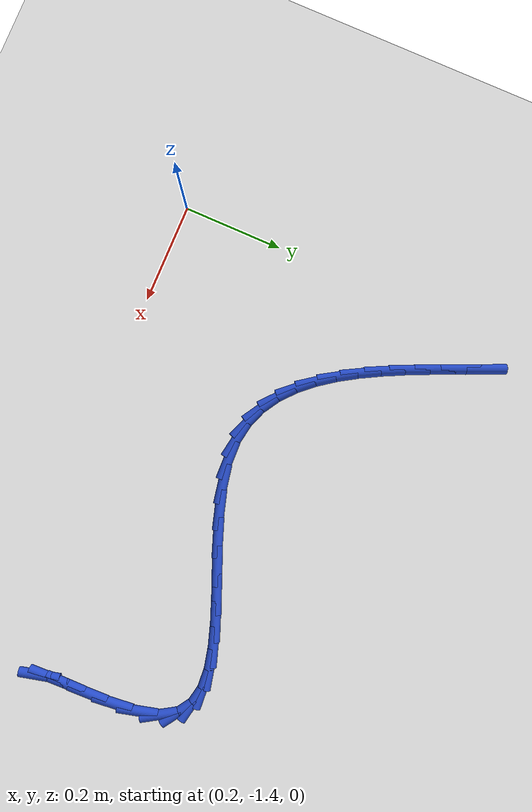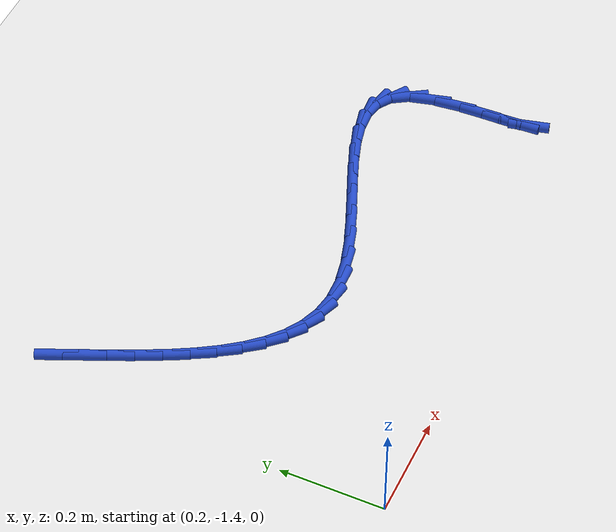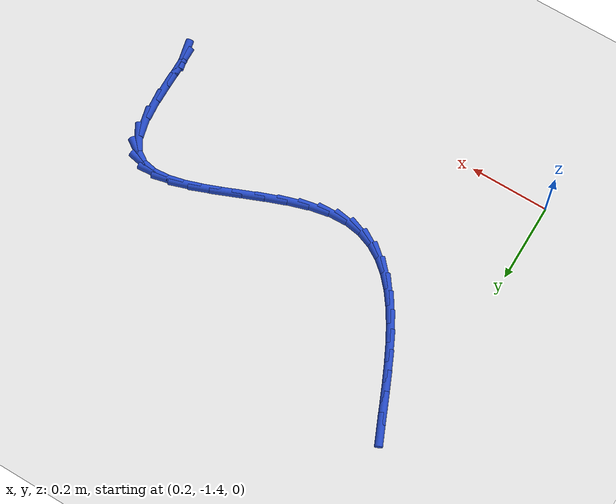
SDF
<sdf version="1.6">
 <world name="default">
  <model name="ground_plane">
   <static>1</static>
   <link name="link">
    <collision name="collision">
     <geometry><plane><normal>0 0 1</normal><size>100 100</size></plane></geometry>
     <surface><friction><ode><mu>100</mu><mu2>50</mu2></ode></friction></surface>
    </collision>
    <visual name="visual">
     <cast_shadows>0</cast_shadows>
     <geometry><plane><normal>0 0 1</normal><size>100 100</size></plane></geometry>
     <material>
      <script><uri>file://media/materials/scripts/gazebo.material</uri><name>Gazebo/WhiteGlow</name></script>
     </material>
    </visual>
   </link>
  </model>
  <model name="line">
   <link name="link_141">
    <pose>1.155107955682693 -1.2926179977778152 0.01 0 1.57 -1.333927067120925</pose>
    <collision name="collision">
     <geometry><cylinder><radius>0.01</radius><length>0.08</length></cylinder></geometry>
    </collision>
    <visual name="visual">
     <material>
      <script><name>Gazebo/Blue</name><uri>file://media/materials/scripts/gazebo.material</uri></script>
     </material>
     <geometry><cylinder><radius>0.01</radius><length>0.08</length></cylinder></geometry>
    </visual>
   </link>
   <link name="link_142">
    <pose>1.150806997937086 -1.2748013454733287 0.01 0 1.57 -1.5365008615518945</pose>
    <collision name="collision">
     <geometry><cylinder><radius>0.01</radius><length>0.08</length></cylinder></geometry>
    </collision>
    <visual name="visual">
     <material>
      <script><name>Gazebo/Blue</name><uri>file://media/materials/scripts/gazebo.material</uri></script>
     </material>
     <geometry><cylinder><radius>0.01</radius><length>0.08</length></cylinder></geometry>
    </visual>
   </link>
   <link name="link_143">
    <pose>1.149600558940589 -1.2396373389548523 0.01 0 1.57 -1.5639382713969874</pose>
    <collision name="collision">
     <geometry><cylinder><radius>0.01</radius><length>0.08</length></cylinder></geometry>
    </collision>
    <visual name="visual">
     <material>
      <script><name>Gazebo/Blue</name><uri>file://media/materials/scripts/gazebo.material</uri></script>
     </material>
     <geometry><cylinder><radius>0.01</radius><length>0.08</length></cylinder></geometry>
    </visual>
   </link>
   <link name="link_144">
    <pose>1.14928223666944 -1.1932222457364223 0.01 0 1.57 -1.538558429131092</pose>
    <collision name="collision">
     <geometry><cylinder><radius>0.01</radius><length>0.08</length></cylinder></geometry>
    </collision>
    <visual name="visual">
     <material>
      <script><name>Gazebo/Blue</name><uri>file://media/materials/scripts/gazebo.material</uri></script>
     </material>
     <geometry><cylinder><radius>0.01</radius><length>0.08</length></cylinder></geometry>
    </visual>
   </link>
   <link name="link_145">
    <pose>1.147622084886745 -1.141743187201961 0.01 0 1.57 -1.4672687945599394</pose>
    <collision name="collision">
     <geometry><cylinder><radius>0.01</radius><length>0.08</length></cylinder></geometry>
    </collision>
    <visual name="visual">
     <material>
      <script><name>Gazebo/Blue</name><uri>file://media/materials/scripts/gazebo.material</uri></script>
     </material>
     <geometry><cylinder><radius>0.01</radius><length>0.08</length></cylinder></geometry>
    </visual>
   </link>
   <link name="link_146">
    <pose>1.1423901573556112 -1.091387284735388 0.01 0 1.57 -1.3198740815628909</pose>
    <collision name="collision">
     <geometry><cylinder><radius>0.01</radius><length>0.08</length></cylinder></geometry>
    </collision>
    <visual name="visual">
     <material>
      <script><name>Gazebo/Blue</name><uri>file://media/materials/scripts/gazebo.material</uri></script>
     </material>
     <geometry><cylinder><radius>0.01</radius><length>0.08</length></cylinder></geometry>
    </visual>
   </link>
   <link name="link_147">
    <pose>1.1313565078391452 -1.0483416597206259 0.01 0 1.57 -1.0179044475541237</pose>
    <collision name="collision">
     <geometry><cylinder><radius>0.01</radius><length>0.08</length></cylinder></geometry>
    </collision>
    <visual name="visual">
     <material>
      <script><name>Gazebo/Blue</name><uri>file://media/materials/scripts/gazebo.material</uri></script>
     </material>
     <geometry><cylinder><radius>0.01</radius><length>0.08</length></cylinder></geometry>
    </visual>
   </link>
   <link name="link_148">
    <pose>1.1126187995726387 -1.017977091920626 0.01 0 1.57 -0.5879303829890019</pose>
    <collision name="collision">
     <geometry><cylinder><radius>0.01</radius><length>0.08</length></cylinder></geometry>
    </collision>
    <visual name="visual">
     <material>
      <script><name>Gazebo/Blue</name><uri>file://media/materials/scripts/gazebo.material</uri></script>
     </material>
     <geometry><cylinder><radius>0.01</radius><length>0.08</length></cylinder></geometry>
    </visual>
   </link>
   <link name="link_149">
    <pose>1.0863581660731163 -1.0004727422611752 0.01 0 1.57 -0.19568793569312615</pose>
    <collision name="collision">
     <geometry><cylinder><radius>0.01</radius><length>0.08</length></cylinder></geometry>
    </collision>
    <visual name="visual">
     <material>
      <script><name>Gazebo/Blue</name><uri>file://media/materials/scripts/gazebo.material</uri></script>
     </material>
     <geometry><cylinder><radius>0.01</radius><length>0.08</length></cylinder></geometry>
    </visual>
   </link>
   <link name="link_150">
    <pose>1.0535720339016528 -0.9939737218516103 0.01 0 1.57 0.06897170560875293</pose>
    <collision name="collision">
     <geometry><cylinder><radius>0.01</radius><length>0.08</length></cylinder></geometry>
    </collision>
    <visual name="visual">
     <material>
      <script><name>Gazebo/Blue</name><uri>file://media/materials/scripts/gazebo.material</uri></script>
     </material>
     <geometry><cylinder><radius>0.01</radius><length>0.08</length></cylinder></geometry>
    </visual>
   </link>
   <link name="link_151">
    <pose>1.0152597388611373 -0.9966203843272314 0.01 0 1.57 0.22783466446472175</pose>
    <collision name="collision">
     <geometry><cylinder><radius>0.01</radius><length>0.08</length></cylinder></geometry>
    </collision>
    <visual name="visual">
     <material>
      <script><name>Gazebo/Blue</name><uri>file://media/materials/scripts/gazebo.material</uri></script>
     </material>
     <geometry><cylinder><radius>0.01</radius><length>0.08</length></cylinder></geometry>
    </visual>
   </link>
   <link name="link_152">
    <pose>0.9724206167544606 -1.006553083323339 0.01 0 1.57 0.3198772695228342</pose>
    <collision name="collision">
     <geometry><cylinder><radius>0.01</radius><length>0.08</length></cylinder></geometry>
    </collision>
    <visual name="visual">
     <material>
      <script><name>Gazebo/Blue</name><uri>file://media/materials/scripts/gazebo.material</uri></script>
     </material>
     <geometry><cylinder><radius>0.01</radius><length>0.08</length></cylinder></geometry>
    </visual>
   </link>
   <link name="link_153">
    <pose>0.92605400338451 -1.0219121724752331 0.01 0 1.57 0.3693127696012514</pose>
    <collision name="collision">
     <geometry><cylinder><radius>0.01</radius><length>0.08</length></cylinder></geometry>
    </collision>
    <visual name="visual">
     <material>
      <script><name>Gazebo/Blue</name><uri>file://media/materials/scripts/gazebo.material</uri></script>
     </material>
     <geometry><cylinder><radius>0.01</radius><length>0.08</length></cylinder></geometry>
    </visual>
   </link>
   <link name="link_154">
    <pose>0.8771592345541764 -1.040838005418214 0.01 0 1.57 0.3884053362484214</pose>
    <collision name="collision">
     <geometry><cylinder><radius>0.01</radius><length>0.08</length></cylinder></geometry>
    </collision>
    <visual name="visual">
     <material>
      <script><name>Gazebo/Blue</name><uri>file://media/materials/scripts/gazebo.material</uri></script>
     </material>
     <geometry><cylinder><radius>0.01</radius><length>0.08</length></cylinder></geometry>
    </visual>
   </link>
   <link name="link_155">
    <pose>0.8267356460663493 -1.0614709357875813 0.01 0 1.57 0.38218279987242015</pose>
    <collision name="collision">
     <geometry><cylinder><radius>0.01</radius><length>0.08</length></cylinder></geometry>
    </collision>
    <visual name="visual">
     <material>
      <script><name>Gazebo/Blue</name><uri>file://media/materials/scripts/gazebo.material</uri></script>
     </material>
     <geometry><cylinder><radius>0.01</radius><length>0.08</length></cylinder></geometry>
    </visual>
   </link>
   <link name="link_156">
    <pose>0.7757825737239177 -1.0819513172186357 0.01 0 1.57 0.3507055032674805</pose>
    <collision name="collision">
     <geometry><cylinder><radius>0.01</radius><length>0.08</length></cylinder></geometry>
    </collision>
    <visual name="visual">
     <material>
      <script><name>Gazebo/Blue</name><uri>file://media/materials/scripts/gazebo.material</uri></script>
     </material>
     <geometry><cylinder><radius>0.01</radius><length>0.08</length></cylinder></geometry>
    </visual>
   </link>
   <link name="link_157">
    <pose>0.7252993533297717 -1.1004195033466773 0.01 0 1.57 0.2894365799337809</pose>
    <collision name="collision">
     <geometry><cylinder><radius>0.01</radius><length>0.08</length></cylinder></geometry>
    </collision>
    <visual name="visual">
     <material>
      <script><name>Gazebo/Blue</name><uri>file://media/materials/scripts/gazebo.material</uri></script>
     </material>
     <geometry><cylinder><radius>0.01</radius><length>0.08</length></cylinder></geometry>
    </visual>
   </link>
   <link name="link_158">
    <pose>0.6762853206868004 -1.1150158478070058 0.01 0 1.57 0.18820170959923374</pose>
    <collision name="collision">
     <geometry><cylinder><radius>0.01</radius><length>0.08</length></cylinder></geometry>
    </collision>
    <visual name="visual">
     <material>
      <script><name>Gazebo/Blue</name><uri>file://media/materials/scripts/gazebo.material</uri></script>
     </material>
     <geometry><cylinder><radius>0.01</radius><length>0.08</length></cylinder></geometry>
    </visual>
   </link>
   <link name="link_159">
    <pose>0.6297398115978946 -1.123880704234922 0.01 0 1.57 0.03176117910330701</pose>
    <collision name="collision">
     <geometry><cylinder><radius>0.01</radius><length>0.08</length></cylinder></geometry>
    </collision>
    <visual name="visual">
     <material>
      <script><name>Gazebo/Blue</name><uri>file://media/materials/scripts/gazebo.material</uri></script>
     </material>
     <geometry><cylinder><radius>0.01</radius><length>0.08</length></cylinder></geometry>
    </visual>
   </link>
   <link name="link_160">
    <pose>0.5866127433605948 -1.1252509315536081 0.01 0 1.57 -0.16298113189866317</pose>
    <collision name="collision">
     <geometry><cylinder><radius>0.01</radius><length>0.08</length></cylinder></geometry>
    </collision>
    <visual name="visual">
     <material>
      <script><name>Gazebo/Blue</name><uri>file://media/materials/scripts/gazebo.material</uri></script>
     </material>
     <geometry><cylinder><radius>0.01</radius><length>0.08</length></cylinder></geometry>
    </visual>
   </link>
   <link name="link_161">
    <pose>0.547138923078676 -1.1187598678924293 0.01 0 1.57 -0.3617107584776822</pose>
    <collision name="collision">
     <geometry><cylinder><radius>0.01</radius><length>0.08</length></cylinder></geometry>
    </collision>
    <visual name="visual">
     <material>
      <script><name>Gazebo/Blue</name><uri>file://media/materials/scripts/gazebo.material</uri></script>
     </material>
     <geometry><cylinder><radius>0.01</radius><length>0.08</length></cylinder></geometry>
    </visual>
   </link>
   <link name="link_162">
    <pose>0.511014852161836 -1.105092063788149 0.01 0 1.57 -0.5466114621187149</pose>
    <collision name="collision">
     <geometry><cylinder><radius>0.01</radius><length>0.08</length></cylinder></geometry>
    </collision>
    <visual name="visual">
     <material>
      <script><name>Gazebo/Blue</name><uri>file://media/materials/scripts/gazebo.material</uri></script>
     </material>
     <geometry><cylinder><radius>0.01</radius><length>0.08</length></cylinder></geometry>
    </visual>
   </link>
   <link name="link_163">
    <pose>0.4779238709525487 -1.08495777093082 0.01 0 1.57 -0.7058716763211224</pose>
    <collision name="collision">
     <geometry><cylinder><radius>0.01</radius><length>0.08</length></cylinder></geometry>
    </collision>
    <visual name="visual">
     <material>
      <script><name>Gazebo/Blue</name><uri>file://media/materials/scripts/gazebo.material</uri></script>
     </material>
     <geometry><cylinder><radius>0.01</radius><length>0.08</length></cylinder></geometry>
    </visual>
   </link>
   <link name="link_164">
    <pose>0.44754931979328827 -1.0590672410104953 0.01 0 1.57 -0.835630346658974</pose>
    <collision name="collision">
     <geometry><cylinder><radius>0.01</radius><length>0.08</length></cylinder></geometry>
    </collision>
    <visual name="visual">
     <material>
      <script><name>Gazebo/Blue</name><uri>file://media/materials/scripts/gazebo.material</uri></script>
     </material>
     <geometry><cylinder><radius>0.01</radius><length>0.08</length></cylinder></geometry>
    </visual>
   </link>
   <link name="link_165">
    <pose>0.41957453902652875 -1.028130725717228 0.01 0 1.57 -0.9375802164511349</pose>
    <collision name="collision">
     <geometry><cylinder><radius>0.01</radius><length>0.08</length></cylinder></geometry>
    </collision>
    <visual name="visual">
     <material>
      <script><name>Gazebo/Blue</name><uri>file://media/materials/scripts/gazebo.material</uri></script>
     </material>
     <geometry><cylinder><radius>0.01</radius><length>0.08</length></cylinder></geometry>
    </visual>
   </link>
   <link name="link_166">
    <pose>0.39368286899474464 -0.9928584767410723 0.01 0 1.57 -1.015640434295227</pose>
    <collision name="collision">
     <geometry><cylinder><radius>0.01</radius><length>0.08</length></cylinder></geometry>
    </collision>
    <visual name="visual">
     <material>
      <script><name>Gazebo/Blue</name><uri>file://media/materials/scripts/gazebo.material</uri></script>
     </material>
     <geometry><cylinder><radius>0.01</radius><length>0.08</length></cylinder></geometry>
    </visual>
   </link>
   <link name="link_167">
    <pose>0.36955765004040897 -0.9539607457720789 0.01 0 1.57 -1.073879258995263</pose>
    <collision name="collision">
     <geometry><cylinder><radius>0.01</radius><length>0.08</length></cylinder></geometry>
    </collision>
    <visual name="visual">
     <material>
      <script><name>Gazebo/Blue</name><uri>file://media/materials/scripts/gazebo.material</uri></script>
     </material>
     <geometry><cylinder><radius>0.01</radius><length>0.08</length></cylinder></geometry>
    </visual>
   </link>
   <link name="link_168">
    <pose>0.34688222250599626 -0.9121477845003023 0.01 0 1.57 -1.1156661599332176</pose>
    <collision name="collision">
     <geometry><cylinder><radius>0.01</radius><length>0.08</length></cylinder></geometry>
    </collision>
    <visual name="visual">
     <material>
      <script><name>Gazebo/Blue</name><uri>file://media/materials/scripts/gazebo.material</uri></script>
     </material>
     <geometry><cylinder><radius>0.01</radius><length>0.08</length></cylinder></geometry>
    </visual>
   </link>
   <link name="link_169">
    <pose>0.32533992673398054 -0.868129844615795 0.01 0 1.57 -1.1434725765120433</pose>
    <collision name="collision">
     <geometry><cylinder><radius>0.01</radius><length>0.08</length></cylinder></geometry>
    </collision>
    <visual name="visual">
     <material>
      <script><name>Gazebo/Blue</name><uri>file://media/materials/scripts/gazebo.material</uri></script>
     </material>
     <geometry><cylinder><radius>0.01</radius><length>0.08</length></cylinder></geometry>
    </visual>
   </link>
   <link name="link_170">
    <pose>0.30461410306683584 -0.8226171778086102 0.01 0 1.57 -1.1589115517627961</pose>
    <collision name="collision">
     <geometry><cylinder><radius>0.01</radius><length>0.08</length></cylinder></geometry>
    </collision>
    <visual name="visual">
     <material>
      <script><name>Gazebo/Blue</name><uri>file://media/materials/scripts/gazebo.material</uri></script>
     </material>
     <geometry><cylinder><radius>0.01</radius><length>0.08</length></cylinder></geometry>
    </visual>
   </link>
   <link name="link_171">
    <pose>0.28438809184703634 -0.7763200357688012 0.01 0 1.57 -1.1628220820130615</pose>
    <collision name="collision">
     <geometry><cylinder><radius>0.01</radius><length>0.08</length></cylinder></geometry>
    </collision>
    <visual name="visual">
     <material>
      <script><name>Gazebo/Blue</name><uri>file://media/materials/scripts/gazebo.material</uri></script>
     </material>
     <geometry><cylinder><radius>0.01</radius><length>0.08</length></cylinder></geometry>
    </visual>
   </link>
   <link name="link_172">
    <pose>0.26434523341705624 -0.7299486701864215 0.01 0 1.57 -1.155322340539527</pose>
    <collision name="collision">
     <geometry><cylinder><radius>0.01</radius><length>0.08</length></cylinder></geometry>
    </collision>
    <visual name="visual">
     <material>
      <script><name>Gazebo/Blue</name><uri>file://media/materials/scripts/gazebo.material</uri></script>
     </material>
     <geometry><cylinder><radius>0.01</radius><length>0.08</length></cylinder></geometry>
    </visual>
   </link>
  </model>
 </world>
</sdf>
